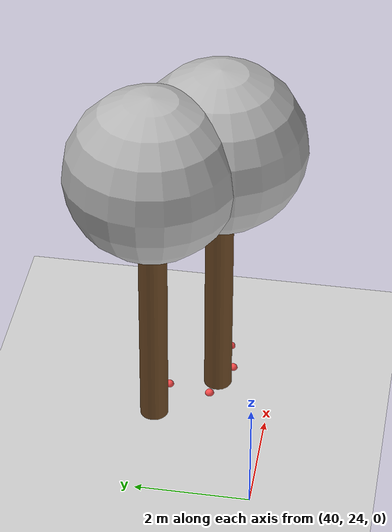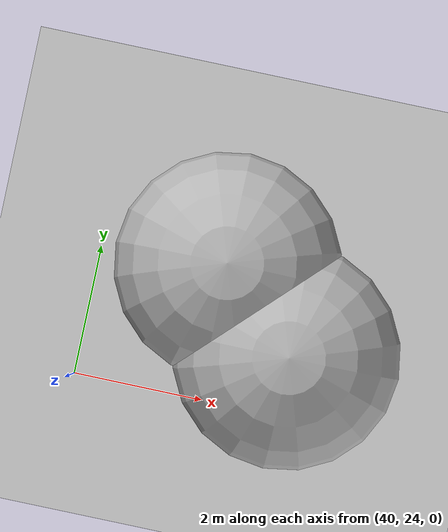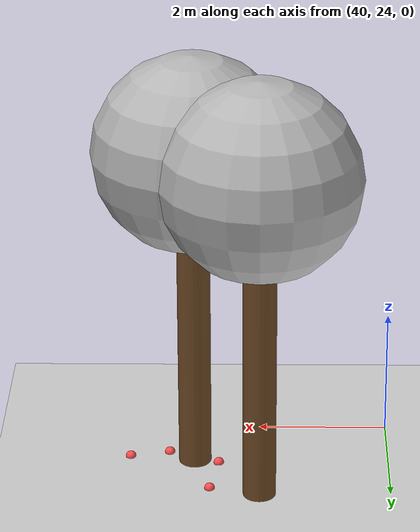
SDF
<sdf version="1.7">
 <world name="default">
  <model name="ground_plane">
   <static>1</static>
   <link name="link">
    <collision name="collision">
     <geometry><plane><normal>0 0 1</normal><size>100 100</size></plane></geometry>
     <surface>
      <contact><collide_bitmask>65535</collide_bitmask></contact>
      <friction><ode><mu>100</mu><mu2>50</mu2></ode></friction>
     </surface>
    </collision>
    <visual name="visual">
     <cast_shadows>0</cast_shadows>
     <geometry><plane><normal>0 0 1</normal><size>100 100</size></plane></geometry>
     <material>
      <script><uri>file://media/materials/scripts/gazebo.material</uri><name>Gazebo/Grey</name></script>
     </material>
    </visual>
   </link>
  </model>
  <model name="tree_simple_36">
   <static>1</static>
   <link name="link">
    <pose>0 0 0.1 0 -0 0</pose>
    <inertial>
     <mass>666</mass>
     <inertia>
      <ixx>0.0861167</ixx>
      <ixy>0</ixy>
      <ixz>0</ixz>
      <iyy>0.0861167</iyy>
      <iyz>0</iyz>
      <izz>0.0861167</izz>
     </inertia>
    </inertial>
    <collision name="collision_trunk">
     <pose>0 0 2 0 -0 0</pose>
     <geometry><cylinder><radius>0.25</radius><length>4</length></cylinder></geometry>
     <surface>
      <contact>
       <poissons_ratio>0.347</poissons_ratio>
       <elastic_modulus>8.8e+09</elastic_modulus>
       <ode><kp>100000</kp><kd>100</kd><max_vel>100</max_vel><min_depth>0.001</min_depth></ode>
      </contact>
      <friction>
       <torsional>
        <coefficient>1</coefficient>
        <use_patch_radius>0</use_patch_radius>
        <surface_radius>0.01</surface_radius>
       </torsional>
      </friction>
     </surface>
    </collision>
    <collision name="collision_treetop">
     <pose>0 0 5.2 0 -0 0</pose>
     <geometry><sphere><radius>1.5</radius></sphere></geometry>
     <surface>
      <contact>
       <poissons_ratio>0.347</poissons_ratio>
       <elastic_modulus>8.8e+09</elastic_modulus>
       <ode><kp>100000</kp><kd>100</kd><max_vel>100</max_vel><min_depth>0.001</min_depth></ode>
      </contact>
      <friction>
       <torsional>
        <coefficient>1</coefficient>
        <use_patch_radius>0</use_patch_radius>
        <surface_radius>0.01</surface_radius>
       </torsional>
      </friction>
     </surface>
    </collision>
    <visual name="trunk">
     <pose>0 0 2 0 -0 0</pose>
     <geometry><cylinder><radius>0.25</radius><length>4</length></cylinder></geometry>
     <material>
      <script>
       <uri>model://tree_simple/scripts</uri>
       <uri>model://tree_simple/materials/textures</uri>
       <name>TreeSimple/Trunk</name>
      </script>
     </material>
    </visual>
    <visual name="treetop">
     <pose>0 0 5.2 0 -0 0</pose>
     <geometry><sphere><radius>1.5</radius></sphere></geometry>
     <material>
      <script>
       <uri>model://tree_simple/scripts</uri>
       <uri>model://tree_simple/materials/textures</uri>
       <name>TreeSimple/Treetop</name>
      </script>
     </material>
    </visual>
   </link>
   <pose>42 26 -0.1 0 -0 0</pose>
  </model>
  <model name="tree_simple_37">
   <static>1</static>
   <link name="link">
    <pose>0 0 0.1 0 -0 0</pose>
    <inertial>
     <mass>666</mass>
     <inertia>
      <ixx>0.0861167</ixx>
      <ixy>0</ixy>
      <ixz>0</ixz>
      <iyy>0.0861167</iyy>
      <iyz>0</iyz>
      <izz>0.0861167</izz>
     </inertia>
    </inertial>
    <collision name="collision_trunk">
     <pose>0 0 2 0 -0 0</pose>
     <geometry><cylinder><radius>0.25</radius><length>4</length></cylinder></geometry>
     <surface>
      <contact>
       <poissons_ratio>0.347</poissons_ratio>
       <elastic_modulus>8.8e+09</elastic_modulus>
       <ode><kp>100000</kp><kd>100</kd><max_vel>100</max_vel><min_depth>0.001</min_depth></ode>
      </contact>
      <friction>
       <torsional>
        <coefficient>1</coefficient>
        <use_patch_radius>0</use_patch_radius>
        <surface_radius>0.01</surface_radius>
       </torsional>
      </friction>
     </surface>
    </collision>
    <collision name="collision_treetop">
     <pose>0 0 5.2 0 -0 0</pose>
     <geometry><sphere><radius>1.5</radius></sphere></geometry>
     <surface>
      <contact>
       <poissons_ratio>0.347</poissons_ratio>
       <elastic_modulus>8.8e+09</elastic_modulus>
       <ode><kp>100000</kp><kd>100</kd><max_vel>100</max_vel><min_depth>0.001</min_depth></ode>
      </contact>
      <friction>
       <torsional>
        <coefficient>1</coefficient>
        <use_patch_radius>0</use_patch_radius>
        <surface_radius>0.01</surface_radius>
       </torsional>
      </friction>
     </surface>
    </collision>
    <visual name="trunk">
     <pose>0 0 2 0 -0 0</pose>
     <geometry><cylinder><radius>0.25</radius><length>4</length></cylinder></geometry>
     <material>
      <script>
       <uri>model://tree_simple/scripts</uri>
       <uri>model://tree_simple/materials/textures</uri>
       <name>TreeSimple/Trunk</name>
      </script>
     </material>
    </visual>
    <visual name="treetop">
     <pose>0 0 5.2 0 -0 0</pose>
     <geometry><sphere><radius>1.5</radius></sphere></geometry>
     <material>
      <script>
       <uri>model://tree_simple/scripts</uri>
       <uri>model://tree_simple/materials/textures</uri>
       <name>TreeSimple/Treetop</name>
      </script>
     </material>
    </visual>
   </link>
   <pose>43 25 -0.1 0 -0 0</pose>
  </model>
  <model name="seed_red_162">
   <link name="link">
    <inertial>
     <mass>1</mass>
     <inertia><ixx>0.1</ixx><ixy>0</ixy><ixz>0</ixz><iyy>0.1</iyy><iyz>0</iyz><izz>0.1</izz></inertia>
    </inertial>
    <visual name="visual">
     <geometry><sphere><radius>0.08</radius></sphere></geometry>
     <material>
      <script><name>Gazebo/Grey</name><uri>file://media/materials/scripts/gazebo.material</uri></script>
      <shader type="pixel"><normal_map>__default__</normal_map></shader>
      <ambient>1 0.3 0.3 1</ambient>
      <diffuse>0.7 0.7 0.7 1</diffuse>
      <specular>0.01 0.01 0.01 1</specular>
      <emissive>0 0 0 1</emissive>
     </material>
    </visual>
    <collision name="collision">
     <geometry><sphere><radius>0.0005</radius></sphere></geometry>
     <surface>
      <friction>
       <ode><mu>1</mu><mu2>1</mu2><fdir1>0 0 0</fdir1><slip1>0</slip1><slip2>0</slip2></ode>
       <torsional>
        <coefficient>1</coefficient>
        <patch_radius>0</patch_radius>
        <surface_radius>0</surface_radius>
        <use_patch_radius>1</use_patch_radius>
        <ode><slip>0</slip></ode>
       </torsional>
      </friction>
      <bounce><restitution_coefficient>0</restitution_coefficient><threshold>1e+06</threshold></bounce>
      <contact>
       <collide_without_contact>0</collide_without_contact>
       <collide_without_contact_bitmask>1</collide_without_contact_bitmask>
       <collide_bitmask>1</collide_bitmask>
       <ode>
        <soft_cfm>0</soft_cfm>
        <soft_erp>0.2</soft_erp>
        <kp>1e+13</kp>
        <kd>1</kd>
        <max_vel>0.01</max_vel>
        <min_depth>0</min_depth>
       </ode>
       <bullet>
        <split_impulse>1</split_impulse>
        <split_impulse_penetration_threshold>-0.01</split_impulse_penetration_threshold>
        <soft_cfm>0</soft_cfm>
        <soft_erp>0.2</soft_erp>
        <kp>1e+13</kp>
        <kd>1</kd>
       </bullet>
      </contact>
     </surface>
    </collision>
   </link>
   <static>0</static>
   <pose>42.7606 25.8526 0.0005 0 -0 0</pose>
  </model>
  <model name="seed_red_172">
   <link name="link">
    <inertial>
     <mass>1</mass>
     <inertia><ixx>0.1</ixx><ixy>0</ixy><ixz>0</ixz><iyy>0.1</iyy><iyz>0</iyz><izz>0.1</izz></inertia>
    </inertial>
    <visual name="visual">
     <geometry><sphere><radius>0.08</radius></sphere></geometry>
     <material>
      <script><name>Gazebo/Grey</name><uri>file://media/materials/scripts/gazebo.material</uri></script>
      <shader type="pixel"><normal_map>__default__</normal_map></shader>
      <ambient>1 0.3 0.3 1</ambient>
      <diffuse>0.7 0.7 0.7 1</diffuse>
      <specular>0.01 0.01 0.01 1</specular>
      <emissive>0 0 0 1</emissive>
     </material>
    </visual>
    <collision name="collision">
     <geometry><sphere><radius>0.0005</radius></sphere></geometry>
     <surface>
      <friction>
       <ode><mu>1</mu><mu2>1</mu2><fdir1>0 0 0</fdir1><slip1>0</slip1><slip2>0</slip2></ode>
       <torsional>
        <coefficient>1</coefficient>
        <patch_radius>0</patch_radius>
        <surface_radius>0</surface_radius>
        <use_patch_radius>1</use_patch_radius>
        <ode><slip>0</slip></ode>
       </torsional>
      </friction>
      <bounce><restitution_coefficient>0</restitution_coefficient><threshold>1e+06</threshold></bounce>
      <contact>
       <collide_without_contact>0</collide_without_contact>
       <collide_without_contact_bitmask>1</collide_without_contact_bitmask>
       <collide_bitmask>1</collide_bitmask>
       <ode>
        <soft_cfm>0</soft_cfm>
        <soft_erp>0.2</soft_erp>
        <kp>1e+13</kp>
        <kd>1</kd>
        <max_vel>0.01</max_vel>
        <min_depth>0</min_depth>
       </ode>
       <bullet>
        <split_impulse>1</split_impulse>
        <split_impulse_penetration_threshold>-0.01</split_impulse_penetration_threshold>
        <soft_cfm>0</soft_cfm>
        <soft_erp>0.2</soft_erp>
        <kp>1e+13</kp>
        <kd>1</kd>
       </bullet>
      </contact>
     </surface>
    </collision>
   </link>
   <static>0</static>
   <pose>44.0076 24.9059 0.0005 0 -0 0</pose>
  </model>
  <model name="seed_red_173">
   <link name="link">
    <inertial>
     <mass>1</mass>
     <inertia><ixx>0.1</ixx><ixy>0</ixy><ixz>0</ixz><iyy>0.1</iyy><iyz>0</iyz><izz>0.1</izz></inertia>
    </inertial>
    <visual name="visual">
     <geometry><sphere><radius>0.08</radius></sphere></geometry>
     <material>
      <script><name>Gazebo/Grey</name><uri>file://media/materials/scripts/gazebo.material</uri></script>
      <shader type="pixel"><normal_map>__default__</normal_map></shader>
      <ambient>1 0.3 0.3 1</ambient>
      <diffuse>0.7 0.7 0.7 1</diffuse>
      <specular>0.01 0.01 0.01 1</specular>
      <emissive>0 0 0 1</emissive>
     </material>
    </visual>
    <collision name="collision">
     <geometry><sphere><radius>0.0005</radius></sphere></geometry>
     <surface>
      <friction>
       <ode><mu>1</mu><mu2>1</mu2><fdir1>0 0 0</fdir1><slip1>0</slip1><slip2>0</slip2></ode>
       <torsional>
        <coefficient>1</coefficient>
        <patch_radius>0</patch_radius>
        <surface_radius>0</surface_radius>
        <use_patch_radius>1</use_patch_radius>
        <ode><slip>0</slip></ode>
       </torsional>
      </friction>
      <bounce><restitution_coefficient>0</restitution_coefficient><threshold>1e+06</threshold></bounce>
      <contact>
       <collide_without_contact>0</collide_without_contact>
       <collide_without_contact_bitmask>1</collide_without_contact_bitmask>
       <collide_bitmask>1</collide_bitmask>
       <ode>
        <soft_cfm>0</soft_cfm>
        <soft_erp>0.2</soft_erp>
        <kp>1e+13</kp>
        <kd>1</kd>
        <max_vel>0.01</max_vel>
        <min_depth>0</min_depth>
       </ode>
       <bullet>
        <split_impulse>1</split_impulse>
        <split_impulse_penetration_threshold>-0.01</split_impulse_penetration_threshold>
        <soft_cfm>0</soft_cfm>
        <soft_erp>0.2</soft_erp>
        <kp>1e+13</kp>
        <kd>1</kd>
       </bullet>
      </contact>
     </surface>
    </collision>
   </link>
   <static>0</static>
   <pose>43.4021 24.7782 0.0005 0 -0 0</pose>
  </model>
  <model name="seed_red_175">
   <link name="link">
    <inertial>
     <mass>1</mass>
     <inertia><ixx>0.1</ixx><ixy>0</ixy><ixz>0</ixz><iyy>0.1</iyy><iyz>0</iyz><izz>0.1</izz></inertia>
    </inertial>
    <visual name="visual">
     <geometry><sphere><radius>0.08</radius></sphere></geometry>
     <material>
      <script><name>Gazebo/Grey</name><uri>file://media/materials/scripts/gazebo.material</uri></script>
      <shader type="pixel"><normal_map>__default__</normal_map></shader>
      <ambient>1 0.3 0.3 1</ambient>
      <diffuse>0.7 0.7 0.7 1</diffuse>
      <specular>0.01 0.01 0.01 1</specular>
      <emissive>0 0 0 1</emissive>
     </material>
    </visual>
    <collision name="collision">
     <geometry><sphere><radius>0.0005</radius></sphere></geometry>
     <surface>
      <friction>
       <ode><mu>1</mu><mu2>1</mu2><fdir1>0 0 0</fdir1><slip1>0</slip1><slip2>0</slip2></ode>
       <torsional>
        <coefficient>1</coefficient>
        <patch_radius>0</patch_radius>
        <surface_radius>0</surface_radius>
        <use_patch_radius>1</use_patch_radius>
        <ode><slip>0</slip></ode>
       </torsional>
      </friction>
      <bounce><restitution_coefficient>0</restitution_coefficient><threshold>1e+06</threshold></bounce>
      <contact>
       <collide_without_contact>0</collide_without_contact>
       <collide_without_contact_bitmask>1</collide_without_contact_bitmask>
       <collide_bitmask>1</collide_bitmask>
       <ode>
        <soft_cfm>0</soft_cfm>
        <soft_erp>0.2</soft_erp>
        <kp>1e+13</kp>
        <kd>1</kd>
        <max_vel>0.01</max_vel>
        <min_depth>0</min_depth>
       </ode>
       <bullet>
        <split_impulse>1</split_impulse>
        <split_impulse_penetration_threshold>-0.01</split_impulse_penetration_threshold>
        <soft_cfm>0</soft_cfm>
        <soft_erp>0.2</soft_erp>
        <kp>1e+13</kp>
        <kd>1</kd>
       </bullet>
      </contact>
     </surface>
    </collision>
   </link>
   <static>0</static>
   <pose>42.6326 25.0962 0.0005 0 -0 0</pose>
  </model>
 </world>
</sdf>
